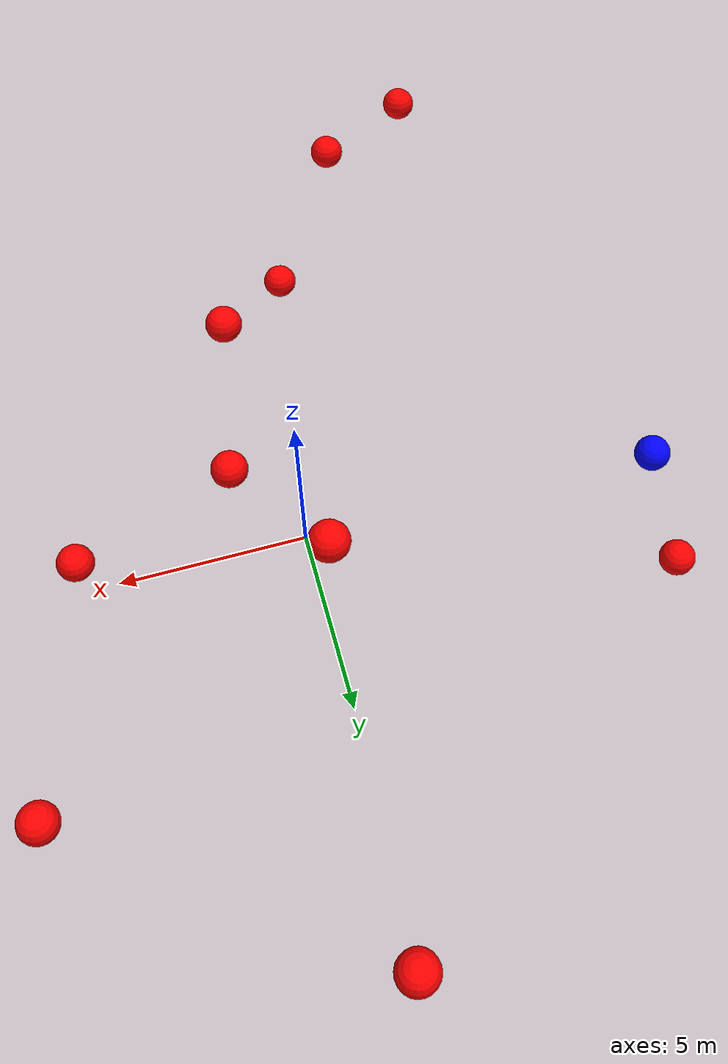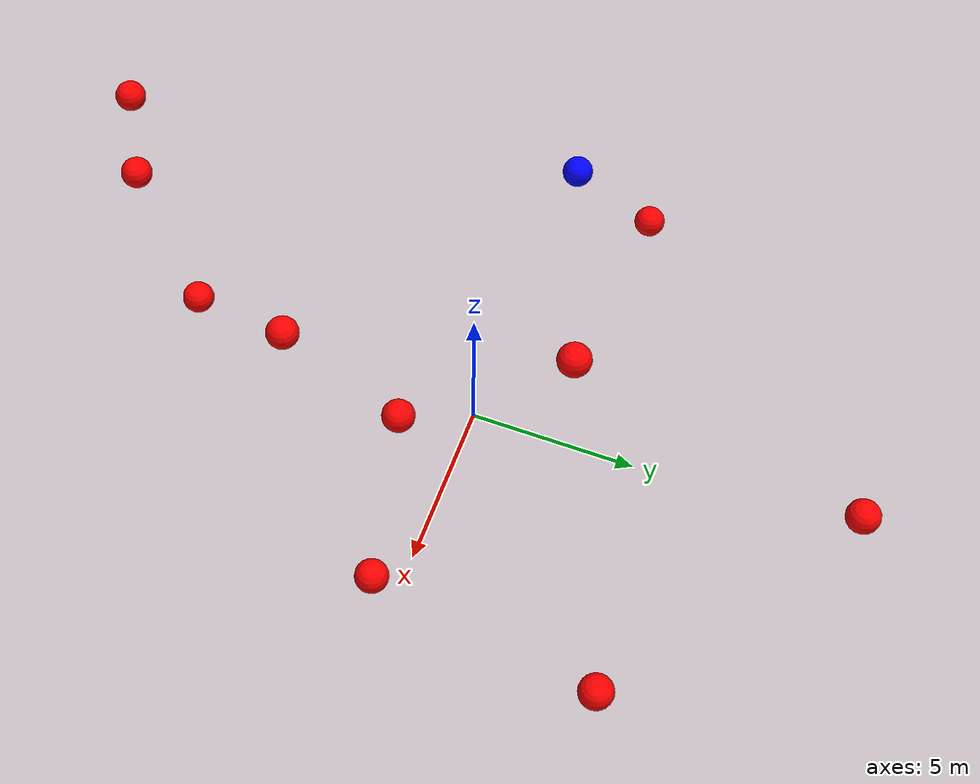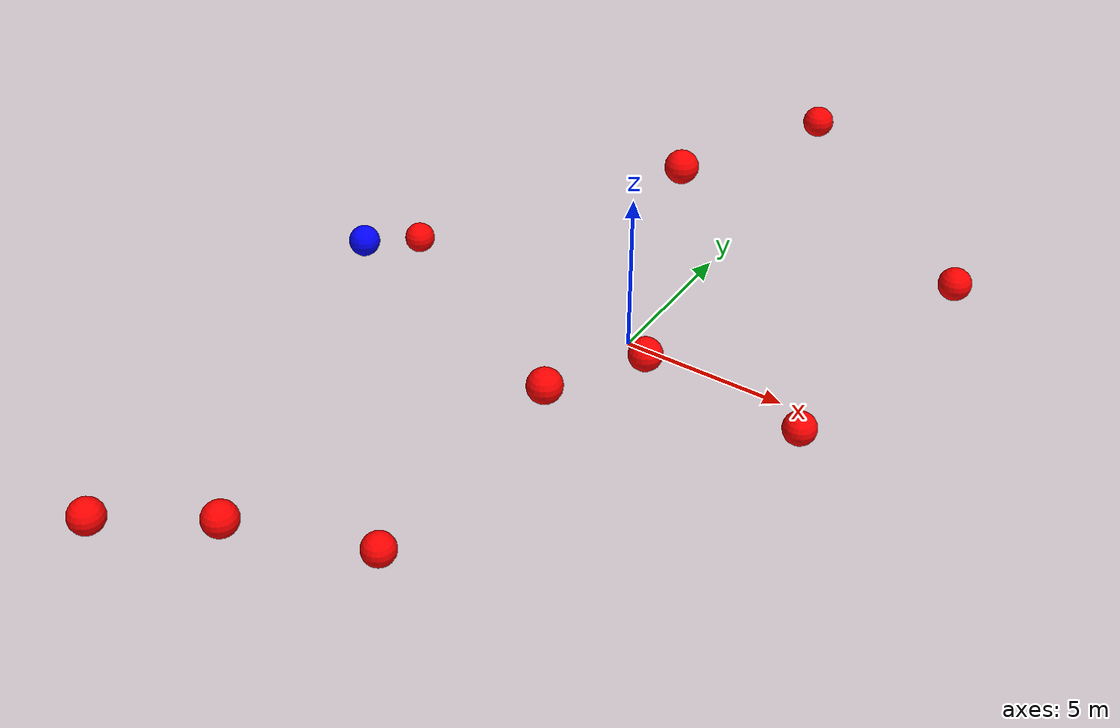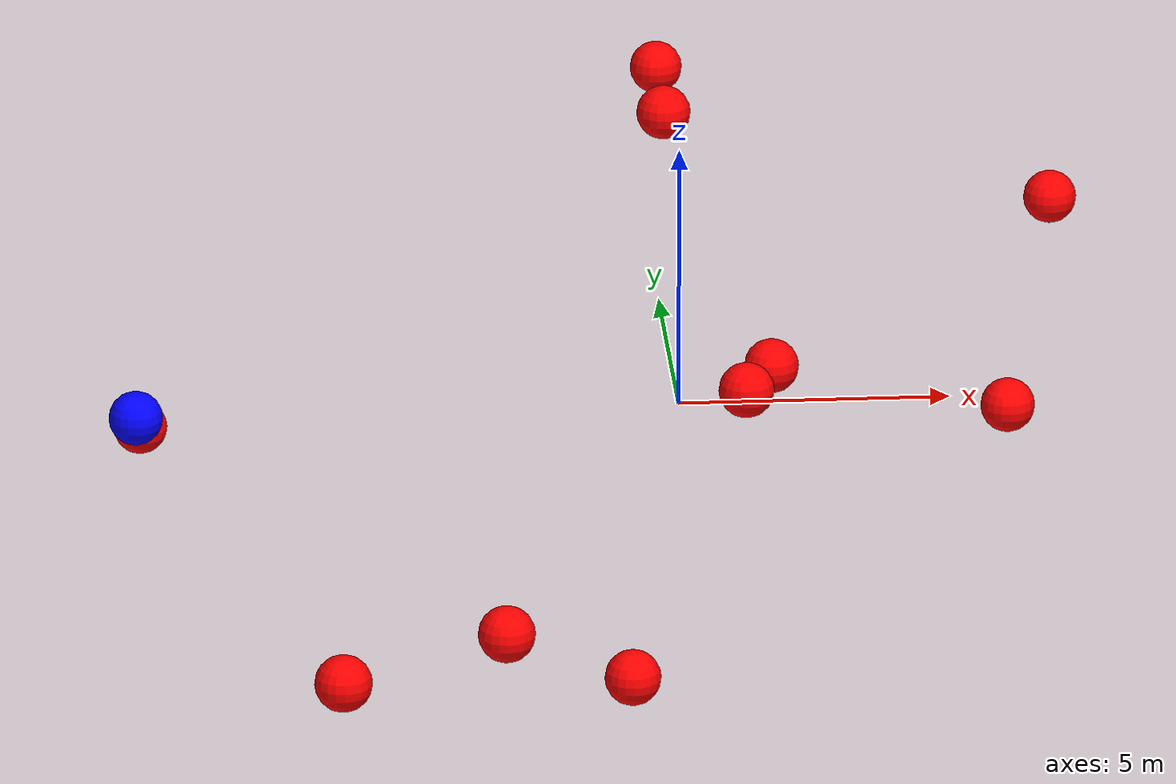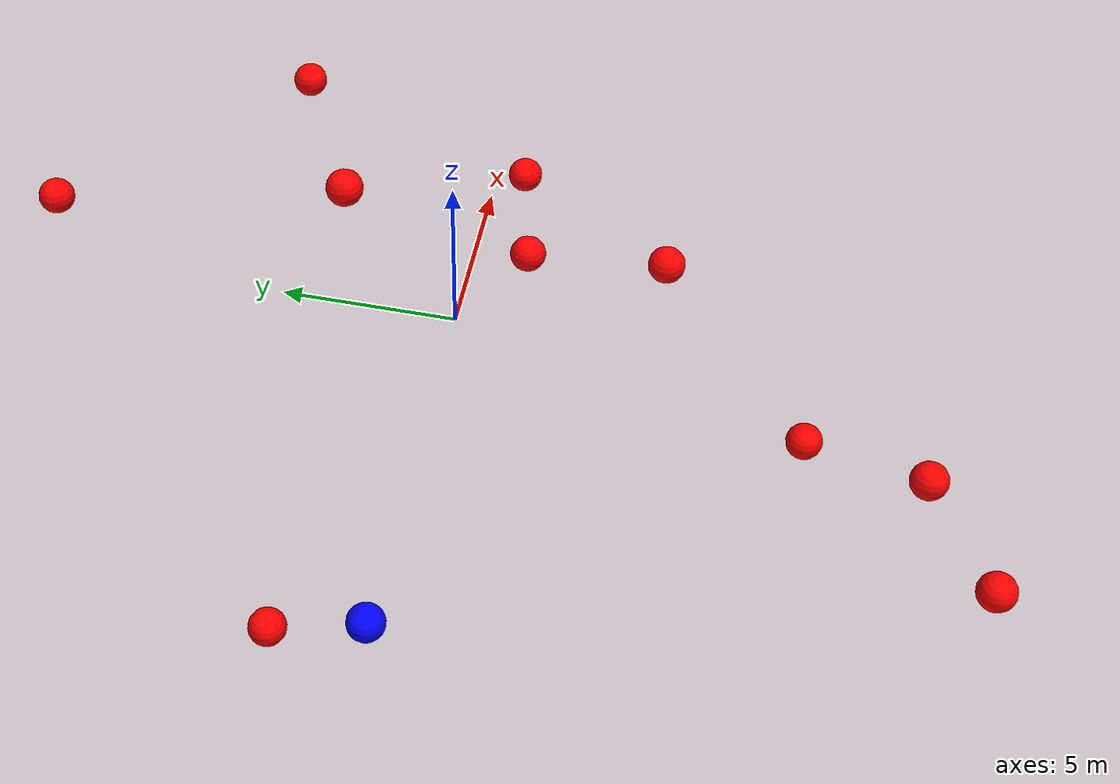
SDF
<?xml version="1.0" ?>
<sdf version="1.8">
    <world name="3d_world">
        <physics name="1ms" type="ode">
            <max_step_size>0.001</max_step_size>
            <real_time_factor>1.0</real_time_factor>
            <real_time_update_rate>1000.0</real_time_update_rate>
        </physics>
        <gravity>0 0 0</gravity>

        <plugin
            filename="gz-sim-physics-system"
            name="gz::sim::v8::systems::Physics">
        </plugin>
        <plugin
            filename="libignition-gazebo-user-commands-system.so"
            name="ignition::gazebo::systems::UserCommands">
        </plugin>
        <plugin
            filename="gz-sim-scene-broadcaster-system"
            name="gz::sim::systems::SceneBroadcaster">
        </plugin>
        <plugin
            filename="gz-sim-sensors-system"
            name="gz::sim::systems::Sensors">
            <render_engine>ogre2</render_engine>
        </plugin>

        <light type="directional" name="sun">
            <cast_shadows>true</cast_shadows>
            <pose>0 0 10 0 0 0</pose>
            <diffuse>0.8 0.8 0.8 1</diffuse>
            <specular>0.2 0.2 0.2 1</specular>
            <attenuation>
                <range>1000</range>
                <constant>0.9</constant>
                <linear>0.01</linear>
                <quadratic>0.001</quadratic>
            </attenuation>
            <direction>-0.5 0.1 -0.9</direction>
        </light>

        <!-- AGENTE -->
        <model name='agente' canonical_link='chassis'>
            <pose relative_to='world'>-10.0 0 0.0 0 0 0</pose>
            <link name='chassis'>
                <pose relative_to='__model__'>0.0 0 0.0 0 0 0</pose>
                <inertial>
                    <mass>1.14395</mass>
                    <inertia>
                        <ixx>0.095329</ixx>
                        <ixy>0</ixy>
                        <ixz>0</ixz>
                        <iyy>0.381317</iyy>
                        <iyz>0</iyz>
                        <izz>0.476646</izz>
                    </inertia>
                </inertial>
                <visual name='visual'>
                    <geometry>
                        <sphere>
                            <radius>0.5</radius>
                        </sphere>
                    </geometry>
                    <material>
                        <ambient>0.0 0.0 1.0 1</ambient>
                        <diffuse>0.0 0.0 1.0 1</diffuse>
                        <specular>0.0 0.0 1.0 1</specular>
                    </material>
                </visual>
                <collision name='collision'>
                    <geometry>
                        <sphere>
                            <radius>0.5</radius>
                        </sphere>
                    </geometry>
                </collision>
                <enable_gravity>false</enable_gravity>
            </link>

            <link name='lidar_link'>
                <pose relative_to='chassis'>0.0 0 0.1 0 0 0</pose>
                <inertial>
                    <mass>0.1</mass>
                    <inertia>
                        <ixx>0.000166667</ixx>
                        <iyy>0.000166667</iyy>
                        <izz>0.000166667</izz>
                    </inertia>
                </inertial>
                <collision name='collision'>
                    <geometry>
                        <cylinder>
                            <radius>0.05</radius>
                            <length>0.1</length>
                        </cylinder>
                    </geometry>
                </collision>
                <visual name='visual'>
                    <geometry>
                        <cylinder>
                            <radius>0.05</radius>
                            <length>0.1</length>
                        </cylinder>
                    </geometry>
                    <material>
                        <ambient>0.0 1.0 0.0 1</ambient>
                        <diffuse>0.0 1.0 0.0 1</diffuse>
                        <specular>0.0 1.0 0.0 1</specular>
                    </material>
                </visual>
                <sensor name="lidar" type="gpu_lidar">
                    <topic>scan</topic>
                    <update_rate>10</update_rate>
                    <lidar>
                        <scan>
                            <horizontal>
                                <samples>5000</samples>
                                <resolution>1</resolution>
                                <min_angle>-3.14159</min_angle>
                                <max_angle>3.14159</max_angle>
                            </horizontal>
                        </scan>
                        <range>
                            <min>0.1</min>
                            <max>10.0</max>
                            <resolution>0.01</resolution>
                        </range>
                    </lidar>
                    <visualize>true</visualize>
                    <always_on>true</always_on>
                    <update_rate>10</update_rate>
                    <pose_frame>lidar</pose_frame>
                </sensor>
                <enable_gravity>false</enable_gravity>
            </link>

            <joint name="lidar_joint" type="fixed">
                <parent>chassis</parent>
                <child>lidar_link</child>
            </joint>

            <plugin
                filename="ignition-gazebo-joint-state-publisher-system"
                name="ignition::gazebo::systems::JointStatePublisher">
            </plugin>
            <plugin
                filename="ignition-gazebo-odometry-publisher-system"
                name="ignition::gazebo::systems::OdometryPublisher">
                <dimensions>3</dimensions>
            </plugin>
            <plugin
                filename="ignition-gazebo-velocity-control-system"
                name="ignition::gazebo::systems::VelocityControl">
                <initial_linear>0.0 0 0</initial_linear>
                <initial_angular>0 0 0.0</initial_angular>
            </plugin>
            <plugin
                filename="libignition-gazebo-pose-publisher-system.so"
                name="ignition::gazebo::systems::PosePublisher">
                <topic>/agente/pose</topic>
                <frame_id>agente</frame_id>
                <update_rate>30</update_rate>
            </plugin>
        </model>

        <!-- OBSTACLE 1 -->
        <model name='obstacle_1' canonical_link='obstacle'>
            <static>false</static>
            <pose relative_to='world'>1.56 -1.75 1.45 0 0 0</pose>
            <link name='obstacle'>
                <pose relative_to='__model__'>0.0 0 0.0 0 0 0</pose>
                <visual name='visual'>
                    <geometry>
                        <sphere>
                            <radius>0.50</radius>
                        </sphere>
                    </geometry>
                    <material>
                        <ambient>1.0 0.0 0.0 1</ambient>
                        <diffuse>1.0 0.0 0.0 1</diffuse>
                        <specular>1.0 0.0 0.0 1</specular>
                    </material>
                </visual>
                <collision name='collision'>
                    <geometry>
                        <sphere>
                            <radius>0.50</radius>
                        </sphere>
                    </geometry>
                </collision>
                <enable_gravity>false</enable_gravity>
            </link>

            <plugin
                filename="ignition-gazebo-velocity-control-system"
                name="ignition::gazebo::systems::VelocityControl">
                <initial_linear>-0.15 0.40 -0.33</initial_linear>
                <initial_angular>0 0 0</initial_angular>
            </plugin>

            <plugin
                filename="ignition-gazebo-odometry-publisher-system"
                name="ignition::gazebo::systems::OdometryPublisher">
                <dimensions>3</dimensions>
            </plugin>
        </model>

        <!-- OBSTACLE 2 -->
        <model name='obstacle_2' canonical_link='obstacle'>
            <static>false</static>
            <pose relative_to='world'>-6.86 -14.68 1.26 0 0 0</pose>
            <link name='obstacle'>
                <pose relative_to='__model__'>0.0 0 0.0 0 0 0</pose>
                <visual name='visual'>
                    <geometry>
                        <sphere>
                            <radius>0.50</radius>
                        </sphere>
                    </geometry>
                    <material>
                        <ambient>1.0 0.0 0.0 1</ambient>
                        <diffuse>1.0 0.0 0.0 1</diffuse>
                        <specular>1.0 0.0 0.0 1</specular>
                    </material>
                </visual>
                <collision name='collision'>
                    <geometry>
                        <sphere>
                            <radius>0.50</radius>
                        </sphere>
                    </geometry>
                </collision>
                <enable_gravity>false</enable_gravity>
            </link>

            <plugin
                filename="ignition-gazebo-velocity-control-system"
                name="ignition::gazebo::systems::VelocityControl">
                <initial_linear>0.39 1.95 -0.17</initial_linear>
                <initial_angular>0 0 0</initial_angular>
            </plugin>

            <plugin
                filename="ignition-gazebo-odometry-publisher-system"
                name="ignition::gazebo::systems::OdometryPublisher">
                <dimensions>3</dimensions>
            </plugin>
        </model>

        <!-- OBSTACLE 3 -->
        <model name='obstacle_3' canonical_link='obstacle'>
            <static>false</static>
            <pose relative_to='world'>0.78 -5.65 2.65 0 0 0</pose>
            <link name='obstacle'>
                <pose relative_to='__model__'>0.0 0 0.0 0 0 0</pose>
                <visual name='visual'>
                    <geometry>
                        <sphere>
                            <radius>0.50</radius>
                        </sphere>
                    </geometry>
                    <material>
                        <ambient>1.0 0.0 0.0 1</ambient>
                        <diffuse>1.0 0.0 0.0 1</diffuse>
                        <specular>1.0 0.0 0.0 1</specular>
                    </material>
                </visual>
                <collision name='collision'>
                    <geometry>
                        <sphere>
                            <radius>0.50</radius>
                        </sphere>
                    </geometry>
                </collision>
                <enable_gravity>false</enable_gravity>
            </link>

            <plugin
                filename="ignition-gazebo-velocity-control-system"
                name="ignition::gazebo::systems::VelocityControl">
                <initial_linear>-0.24 1.44 -0.67</initial_linear>
                <initial_angular>0 0 0</initial_angular>
            </plugin>

            <plugin
                filename="ignition-gazebo-odometry-publisher-system"
                name="ignition::gazebo::systems::OdometryPublisher">
                <dimensions>3</dimensions>
            </plugin>
        </model>

        <!-- OBSTACLE 4 -->
        <model name='obstacle_4' canonical_link='obstacle'>
            <static>false</static>
            <pose relative_to='world'>6.00 -0.84 0.16 0 0 0</pose>
            <link name='obstacle'>
                <pose relative_to='__model__'>0.0 0 0.0 0 0 0</pose>
                <visual name='visual'>
                    <geometry>
                        <sphere>
                            <radius>0.50</radius>
                        </sphere>
                    </geometry>
                    <material>
                        <ambient>1.0 0.0 0.0 1</ambient>
                        <diffuse>1.0 0.0 0.0 1</diffuse>
                        <specular>1.0 0.0 0.0 1</specular>
                    </material>
                </visual>
                <collision name='collision'>
                    <geometry>
                        <sphere>
                            <radius>0.50</radius>
                        </sphere>
                    </geometry>
                </collision>
                <enable_gravity>false</enable_gravity>
            </link>

            <plugin
                filename="ignition-gazebo-velocity-control-system"
                name="ignition::gazebo::systems::VelocityControl">
                <initial_linear>-1.99 0.15 -0.03</initial_linear>
                <initial_angular>0 0 0</initial_angular>
            </plugin>

            <plugin
                filename="ignition-gazebo-odometry-publisher-system"
                name="ignition::gazebo::systems::OdometryPublisher">
                <dimensions>3</dimensions>
            </plugin>
        </model>

        <!-- OBSTACLE 5 -->
        <model name='obstacle_5' canonical_link='obstacle'>
            <static>false</static>
            <pose relative_to='world'>-3.96 -12.99 1.33 0 0 0</pose>
            <link name='obstacle'>
                <pose relative_to='__model__'>0.0 0 0.0 0 0 0</pose>
                <visual name='visual'>
                    <geometry>
                        <sphere>
                            <radius>0.50</radius>
                        </sphere>
                    </geometry>
                    <material>
                        <ambient>1.0 0.0 0.0 1</ambient>
                        <diffuse>1.0 0.0 0.0 1</diffuse>
                        <specular>1.0 0.0 0.0 1</specular>
                    </material>
                </visual>
                <collision name='collision'>
                    <geometry>
                        <sphere>
                            <radius>0.50</radius>
                        </sphere>
                    </geometry>
                </collision>
                <enable_gravity>false</enable_gravity>
            </link>

            <plugin
                filename="ignition-gazebo-velocity-control-system"
                name="ignition::gazebo::systems::VelocityControl">
                <initial_linear>0.58 1.90 -0.19</initial_linear>
                <initial_angular>0 0 0</initial_angular>
            </plugin>

            <plugin
                filename="ignition-gazebo-odometry-publisher-system"
                name="ignition::gazebo::systems::OdometryPublisher">
                <dimensions>3</dimensions>
            </plugin>
        </model>

        <!-- OBSTACLE 6 -->
        <model name='obstacle_6' canonical_link='obstacle'>
            <static>false</static>
            <pose relative_to='world'>-1.56 -10.00 -0.93 0 0 0</pose>
            <link name='obstacle'>
                <pose relative_to='__model__'>0.0 0 0.0 0 0 0</pose>
                <visual name='visual'>
                    <geometry>
                        <sphere>
                            <radius>0.50</radius>
                        </sphere>
                    </geometry>
                    <material>
                        <ambient>1.0 0.0 0.0 1</ambient>
                        <diffuse>1.0 0.0 0.0 1</diffuse>
                        <specular>1.0 0.0 0.0 1</specular>
                    </material>
                </visual>
                <collision name='collision'>
                    <geometry>
                        <sphere>
                            <radius>0.50</radius>
                        </sphere>
                    </geometry>
                </collision>
                <enable_gravity>false</enable_gravity>
            </link>

            <plugin
                filename="ignition-gazebo-velocity-control-system"
                name="ignition::gazebo::systems::VelocityControl">
                <initial_linear>1.00 1.72 0.16</initial_linear>
                <initial_angular>0 0 0</initial_angular>
            </plugin>

            <plugin
                filename="ignition-gazebo-odometry-publisher-system"
                name="ignition::gazebo::systems::OdometryPublisher">
                <dimensions>3</dimensions>
            </plugin>
        </model>

        <!-- OBSTACLE 7 -->
        <model name='obstacle_7' canonical_link='obstacle'>
            <static>false</static>
            <pose relative_to='world'>7.51 6.21 1.40 0 0 0</pose>
            <link name='obstacle'>
                <pose relative_to='__model__'>0.0 0 0.0 0 0 0</pose>
                <visual name='visual'>
                    <geometry>
                        <sphere>
                            <radius>0.50</radius>
                        </sphere>
                    </geometry>
                    <material>
                        <ambient>1.0 0.0 0.0 1</ambient>
                        <diffuse>1.0 0.0 0.0 1</diffuse>
                        <specular>1.0 0.0 0.0 1</specular>
                    </material>
                </visual>
                <collision name='collision'>
                    <geometry>
                        <sphere>
                            <radius>0.50</radius>
                        </sphere>
                    </geometry>
                </collision>
                <enable_gravity>false</enable_gravity>
            </link>

            <plugin
                filename="ignition-gazebo-velocity-control-system"
                name="ignition::gazebo::systems::VelocityControl">
                <initial_linear>-1.71 -1.00 -0.23</initial_linear>
                <initial_angular>0 0 0</initial_angular>
            </plugin>

            <plugin
                filename="ignition-gazebo-odometry-publisher-system"
                name="ignition::gazebo::systems::OdometryPublisher">
                <dimensions>3</dimensions>
            </plugin>
        </model>

        <!-- OBSTACLE 8 -->
        <model name='obstacle_8' canonical_link='obstacle'>
            <static>false</static>
            <pose relative_to='world'>-9.86 2.66 -1.32 0 0 0</pose>
            <link name='obstacle'>
                <pose relative_to='__model__'>0.0 0 0.0 0 0 0</pose>
                <visual name='visual'>
                    <geometry>
                        <sphere>
                            <radius>0.50</radius>
                        </sphere>
                    </geometry>
                    <material>
                        <ambient>1.0 0.0 0.0 1</ambient>
                        <diffuse>1.0 0.0 0.0 1</diffuse>
                        <specular>1.0 0.0 0.0 1</specular>
                    </material>
                </visual>
                <collision name='collision'>
                    <geometry>
                        <sphere>
                            <radius>0.50</radius>
                        </sphere>
                    </geometry>
                </collision>
                <enable_gravity>false</enable_gravity>
            </link>

            <plugin
                filename="ignition-gazebo-velocity-control-system"
                name="ignition::gazebo::systems::VelocityControl">
                <initial_linear>1.97 -0.32 0.16</initial_linear>
                <initial_angular>0 0 0</initial_angular>
            </plugin>

            <plugin
                filename="ignition-gazebo-odometry-publisher-system"
                name="ignition::gazebo::systems::OdometryPublisher">
                <dimensions>3</dimensions>
            </plugin>
        </model>

        <!-- OBSTACLE 9 -->
        <model name='obstacle_9' canonical_link='obstacle'>
            <static>false</static>
            <pose relative_to='world'>-0.08 2.89 4.63 0 0 0</pose>
            <link name='obstacle'>
                <pose relative_to='__model__'>0.0 0 0.0 0 0 0</pose>
                <visual name='visual'>
                    <geometry>
                        <sphere>
                            <radius>0.50</radius>
                        </sphere>
                    </geometry>
                    <material>
                        <ambient>1.0 0.0 0.0 1</ambient>
                        <diffuse>1.0 0.0 0.0 1</diffuse>
                        <specular>1.0 0.0 0.0 1</specular>
                    </material>
                </visual>
                <collision name='collision'>
                    <geometry>
                        <sphere>
                            <radius>0.50</radius>
                        </sphere>
                    </geometry>
                </collision>
                <enable_gravity>false</enable_gravity>
            </link>

            <plugin
                filename="ignition-gazebo-velocity-control-system"
                name="ignition::gazebo::systems::VelocityControl">
                <initial_linear>0.17 -0.68 -1.09</initial_linear>
                <initial_angular>0 0 0</initial_angular>
            </plugin>

            <plugin
                filename="ignition-gazebo-odometry-publisher-system"
                name="ignition::gazebo::systems::OdometryPublisher">
                <dimensions>3</dimensions>
            </plugin>
        </model>

        <!-- OBSTACLE 10 -->
        <model name='obstacle_10' canonical_link='obstacle'>
            <static>false</static>
            <pose relative_to='world'>0.42 11.57 2.13 0 0 0</pose>
            <link name='obstacle'>
                <pose relative_to='__model__'>0.0 0 0.0 0 0 0</pose>
                <visual name='visual'>
                    <geometry>
                        <sphere>
                            <radius>0.50</radius>
                        </sphere>
                    </geometry>
                    <material>
                        <ambient>1.0 0.0 0.0 1</ambient>
                        <diffuse>1.0 0.0 0.0 1</diffuse>
                        <specular>1.0 0.0 0.0 1</specular>
                    </material>
                </visual>
                <collision name='collision'>
                    <geometry>
                        <sphere>
                            <radius>0.50</radius>
                        </sphere>
                    </geometry>
                </collision>
                <enable_gravity>false</enable_gravity>
            </link>

            <plugin
                filename="ignition-gazebo-velocity-control-system"
                name="ignition::gazebo::systems::VelocityControl">
                <initial_linear>-0.16 -1.96 -0.36</initial_linear>
                <initial_angular>0 0 0</initial_angular>
            </plugin>

            <plugin
                filename="ignition-gazebo-odometry-publisher-system"
                name="ignition::gazebo::systems::OdometryPublisher">
                <dimensions>3</dimensions>
            </plugin>
        </model>

    </world>
</sdf>
